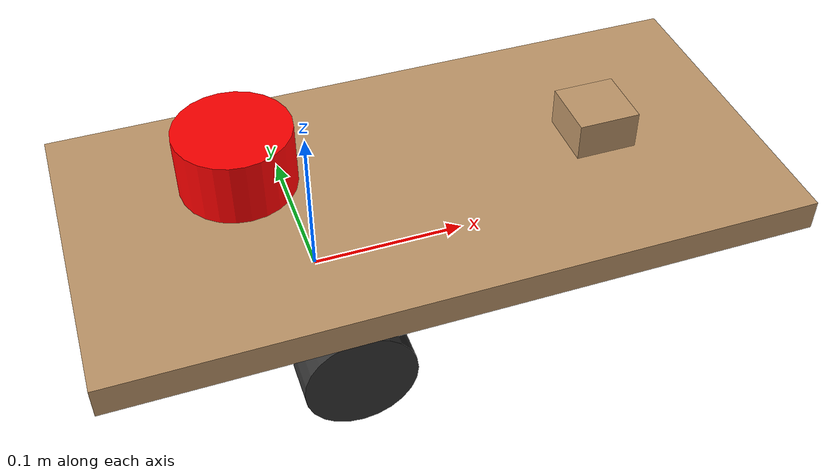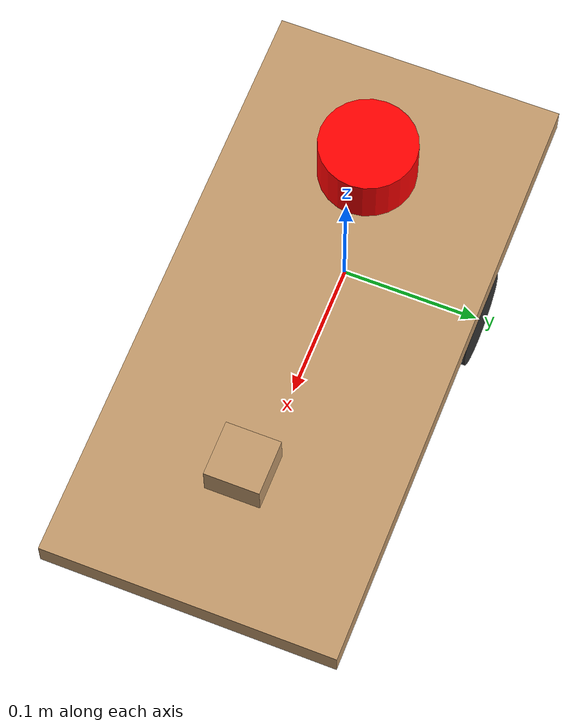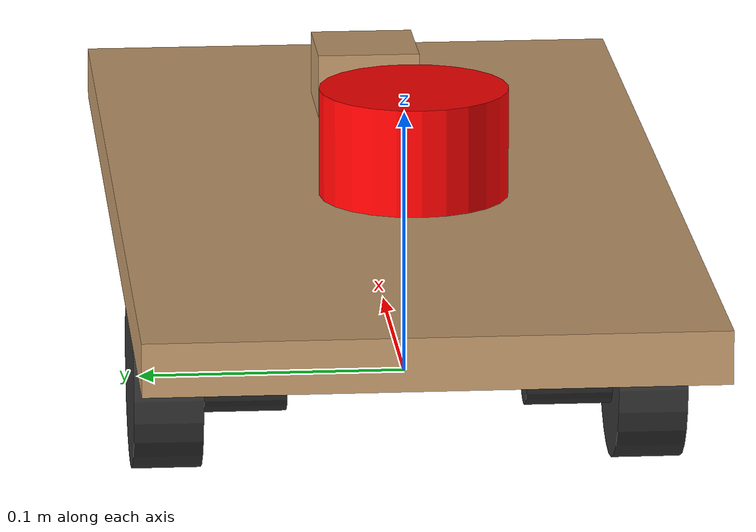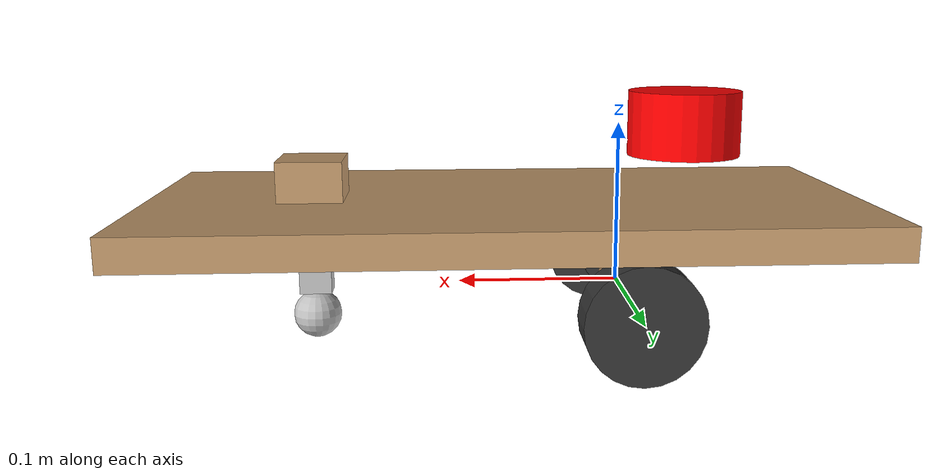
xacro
<?xml version="1.0"?>
<robot xmlns:xacro="http://www.ros.org/wiki/xacro" name="robot">

  <xacro:include filename="robot_core.xacro" />
  <xacro:include filename="gazebo_control.xacro" />
  <xacro:include filename="lidar_sim.xacro" />

</robot>

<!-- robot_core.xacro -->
<robot xmlns:xacro="http://www.ros.org/wiki/xacro" >

    <xacro:include filename="inertial_macros.xacro" />

    <!-- ==================== ROBOT PARAMETERS ==================== -->

    <!-- ==================== MATERIALS (RViz colors) ==================== -->
    <material name="white">
        <color rgba="1 1 1 1"/>
    </material>
    <material name="orange">
        <color rgba="1 0.3 0 1"/>
    </material>
    <material name="blue">
        <color rgba="0.1 0.1 0.8 1"/>
    </material>
    <material name="black">
        <color rgba="0.05 0.05 0.05 1"/>
    </material>
    <material name="dark_grey">
        <color rgba="0.2 0.2 0.2 1"/>
    </material>
    <material name="silver">
        <color rgba="0.75 0.75 0.75 1"/>
    </material>
    <material name="red">
        <color rgba="1 0 0 1"/>
    </material>
    <material name="wood">
        <color rgba="0.76 0.60 0.42 1"/>
    </material>

    <!-- ==================== BASE LINK ==================== -->
    <link name="base_link"> </link>

    <!-- ==================== BASE FOOTPRINT (ground plane) ==================== -->
    <joint name="base_footprint_joint" type="fixed">
        <parent link="base_link"/>
        <child link="base_footprint"/>
        <origin xyz="0 0 -0.0345" rpy="0 0 0"/>
    </joint>
    <link name="base_footprint"> </link>

    <!-- ==================== CHASSIS ==================== -->
    <joint name="chassis_joint" type="fixed">
        <parent link="base_link"/>
        <child link="chassis"/>
        <origin xyz="-0.147 0 0" rpy="0 0 0"/>
    </joint>

    <link name="chassis">
        <visual>
            <origin xyz="0.2185 0 0.045" rpy="0 0 0"/>
            <geometry>
                <box size="0.437 0.212 0.020"/>
            </geometry>
            <material name="wood"/>
        </visual>
        <collision>
            <origin xyz="0.2185 0 0.045" rpy="0 0 0"/>
            <geometry>
                <box size="0.437 0.212 0.020"/>
            </geometry>
        </collision>
        <xacro:inertial_box mass="2.0" x="0.437" y="0.212" z="0.020">
            <origin xyz="0.2185 0 0.045" rpy="0 0 0"/>
        </xacro:inertial_box>
    </link>

    <!-- ==================== WHEEL SUPPORT POSTS ==================== -->
    <!-- Vertical wood support connecting chassis to motor/axle mount area -->
    <!-- Left support post -->
    <joint name="left_support_joint" type="fixed">
        <parent link="chassis"/>
        <child link="left_support"/>
        <origin xyz="0.147 0.07 0" rpy="0 0 0"/>
    </joint>
    <link name="left_support">
        <visual>
            <origin xyz="0 0 0.0175" rpy="0 0 0"/>
            <geometry>
                <box size="0.04 0.02 0.035"/>
            </geometry>
            <material name="wood"/>
        </visual>
    </link>

    <!-- Right support post -->
    <joint name="right_support_joint" type="fixed">
        <parent link="chassis"/>
        <child link="right_support"/>
        <origin xyz="0.147 -0.07 0" rpy="0 0 0"/>
    </joint>
    <link name="right_support">
        <visual>
            <origin xyz="0 0 0.0175" rpy="0 0 0"/>
            <geometry>
                <box size="0.04 0.02 0.035"/>
            </geometry>
            <material name="wood"/>
        </visual>
    </link>

    <!-- ==================== MOTOR HOUSINGS ==================== -->
    <!-- Left motor -->
    <joint name="left_motor_joint" type="fixed">
        <parent link="chassis"/>
        <child link="left_motor"/>
        <origin xyz="0.147 0.065 0" rpy="0 0 0"/>
    </joint>
    <link name="left_motor">
        <visual>
            <origin xyz="0 0 0" rpy="${pi/2} 0 0"/>
            <geometry>
                <cylinder radius="0.014" length="0.040"/>
            </geometry>
            <material name="dark_grey"/>
        </visual>
    </link>

    <!-- Right motor -->
    <joint name="right_motor_joint" type="fixed">
        <parent link="chassis"/>
        <child link="right_motor"/>
        <origin xyz="0.147 -0.065 0" rpy="0 0 0"/>
    </joint>
    <link name="right_motor">
        <visual>
            <origin xyz="0 0 0" rpy="${pi/2} 0 0"/>
            <geometry>
                <cylinder radius="0.014" length="0.040"/>
            </geometry>
            <material name="dark_grey"/>
        </visual>
    </link>

    <!-- ==================== LEFT WHEEL ==================== -->
    <!--
      Center-to-center wheel separation: 0.181 m
      Each wheel at y = ±0.0905 m from base_link
      Wheel: radius 0.0345m, width 0.026m
    -->
    <joint name="left_wheel_joint" type="continuous">
        <parent link="base_link"/>
        <child link="left_wheel"/>
        <origin xyz="0 0.0905 0" rpy="-${pi/2} 0 0"/>
        <axis xyz="0 0 1"/>
    </joint>
    <link name="left_wheel">
        <visual>
            <origin xyz="0 0 0" rpy="0 0 0"/>
            <geometry>
                <cylinder radius="0.0345" length="0.026"/>
            </geometry>
            <material name="dark_grey"/>
        </visual>
        <collision>
            <origin xyz="0 0 0" rpy="0 0 0"/>
            <geometry>
                <sphere radius="0.0345"/>
            </geometry>
        </collision>
        <xacro:inertial_cylinder mass="0.1" length="0.026" radius="0.0345">
            <origin xyz="0 0 0" rpy="0 0 0"/>
        </xacro:inertial_cylinder>
    </link>

    <!-- ==================== RIGHT WHEEL ==================== -->
    <joint name="right_wheel_joint" type="continuous">
        <parent link="base_link"/>
        <child link="right_wheel"/>
        <origin xyz="0 -0.0905 0" rpy="${pi/2} 0 0"/>
        <axis xyz="0 0 -1"/>
    </joint>
    <link name="right_wheel">
        <visual>
            <origin xyz="0 0 0" rpy="0 0 0"/>
            <geometry>
                <cylinder radius="0.0345" length="0.026"/>
            </geometry>
            <material name="dark_grey"/>
        </visual>
        <collision>
            <origin xyz="0 0 0" rpy="0 0 0"/>
            <geometry>
                <sphere radius="0.0345"/>
            </geometry>
        </collision>
        <xacro:inertial_cylinder mass="0.1" length="0.026" radius="0.0345">
            <origin xyz="0 0 0" rpy="0 0 0"/>
        </xacro:inertial_cylinder>
    </link>

    <!-- ==================== CASTER MOUNT BRACKET ==================== -->
    <joint name="caster_mount_joint" type="fixed">
        <parent link="chassis"/>
        <child link="caster_mount"/>
        <origin xyz="0.337 0 0.015" rpy="0 0 0"/>
    </joint>
    <link name="caster_mount">
        <visual>
            <origin xyz="0 0 0" rpy="0 0 0"/>
            <geometry>
                <box size="0.020 0.015 0.040"/>
            </geometry>
            <material name="silver"/>
        </visual>
    </link>

    <!-- ==================== CASTER WHEEL ==================== -->
    <!--
      Passive front caster, 190 mm forward of drive axle.
      Relative to chassis link: x = 0.190 + 0.147 = 0.337 m
      Small sphere (radius 0.015m) at z = -0.0195 so it contacts ground
    -->
    <joint name="caster_wheel_joint" type="fixed">
        <parent link="chassis"/>
        <child link="caster_wheel"/>
        <origin xyz="0.337 0 -0.0195"/>
    </joint>
    <link name="caster_wheel">
        <visual>
            <geometry>
                <sphere radius="0.015"/>
            </geometry>
            <material name="silver"/>
        </visual>
        <collision>
            <geometry>
                <sphere radius="0.015"/>
            </geometry>
        </collision>
        <xacro:inertial_sphere mass="0.05" radius="0.015">
            <origin xyz="0 0 0" rpy="0 0 0"/>
        </xacro:inertial_sphere>
    </link>

    <!-- ==================== LIDAR RISER POST ==================== -->
    <joint name="lidar_riser_joint" type="fixed">
        <parent link="chassis"/>
        <child link="lidar_riser"/>
        <origin xyz="0.337 0 0.0675" rpy="0 0 0"/>
    </joint>
    <link name="lidar_riser">
        <visual>
            <origin xyz="0 0 0" rpy="0 0 0"/>
            <geometry>
                <box size="0.040 0.040 0.025"/>
            </geometry>
            <material name="wood"/>
        </visual>
    </link>

</robot>

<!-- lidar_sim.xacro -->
<robot xmlns:xacro="http://www.ros.org/wiki/xacro">

  <joint name="laser_joint" type="fixed">
    <parent link="chassis"/>
    <child link="laser_frame"/>
    <origin xyz="0.106 0 0.10" rpy="0 0 0"/>
  </joint>

  <link name="laser_frame">
    <visual>
      <geometry>
        <cylinder length="0.04" radius="0.035"/>
      </geometry>
      <material name="red">
        <color rgba="1 0 0 1"/>
      </material>
    </visual>
    <collision>
      <geometry>
        <cylinder length="0.04" radius="0.035"/>
      </geometry>
    </collision>
    <xacro:inertial_cylinder mass="0.15" length="0.04" radius="0.035">
      <origin xyz="0 0 0" rpy="0 0 0"/>
    </xacro:inertial_cylinder>
  </link>

  <gazebo reference="laser_frame">
    <material>
      <ambient>1 0 0 1</ambient>
      <diffuse>1 0 0 1</diffuse>
    </material>
    <sensor name="gpu_lidar" type="gpu_lidar">
      <topic>scan</topic>
      <update_rate>10</update_rate>
      <gz_frame_id>laser_frame</gz_frame_id>
      <lidar>
        <scan>
          <horizontal>
            <samples>720</samples>
            <resolution>1</resolution>
            <min_angle>-3.14159</min_angle>
            <max_angle>3.14159</max_angle>
          </horizontal>
          <vertical>
            <samples>1</samples>
            <resolution>1</resolution>
            <min_angle>0</min_angle>
            <max_angle>0</max_angle>
          </vertical>
        </scan>
        <range>
          <min>0.15</min>
          <max>8.0</max>
          <resolution>0.01</resolution>
        </range>
        <noise>
          <type>gaussian</type>
          <mean>0.0</mean>
          <stddev>0.005</stddev>
        </noise>
      </lidar>
      <always_on>true</always_on>
      <visualize>true</visualize>
    </sensor>
  </gazebo>

</robot>
